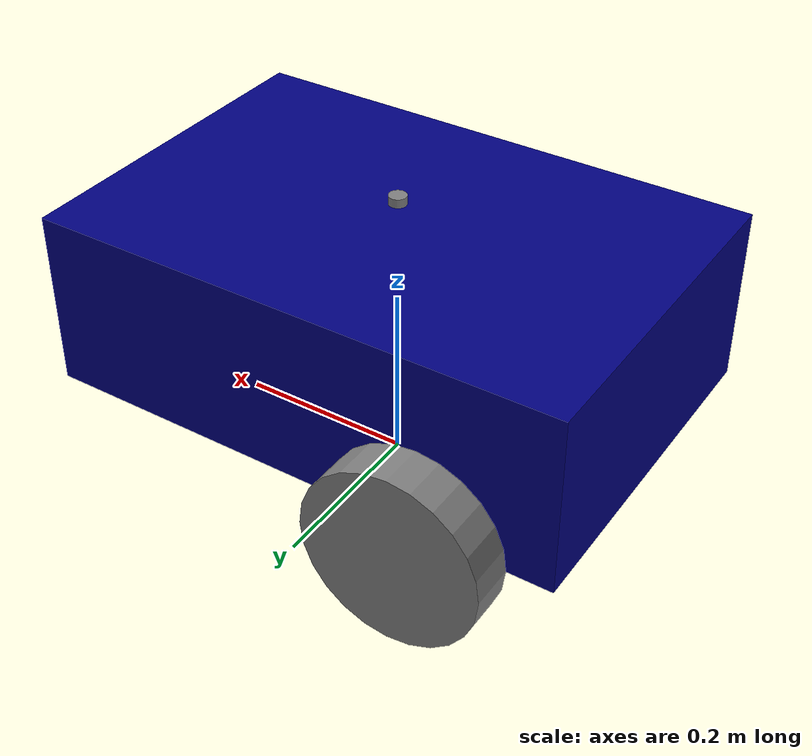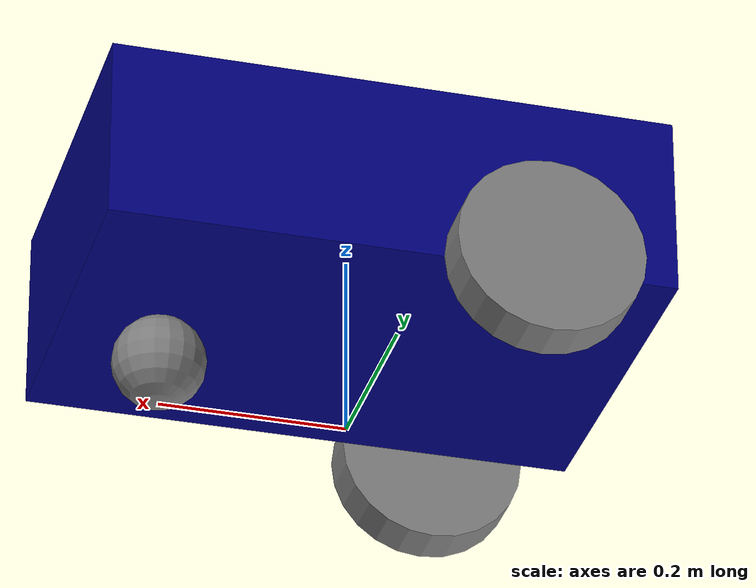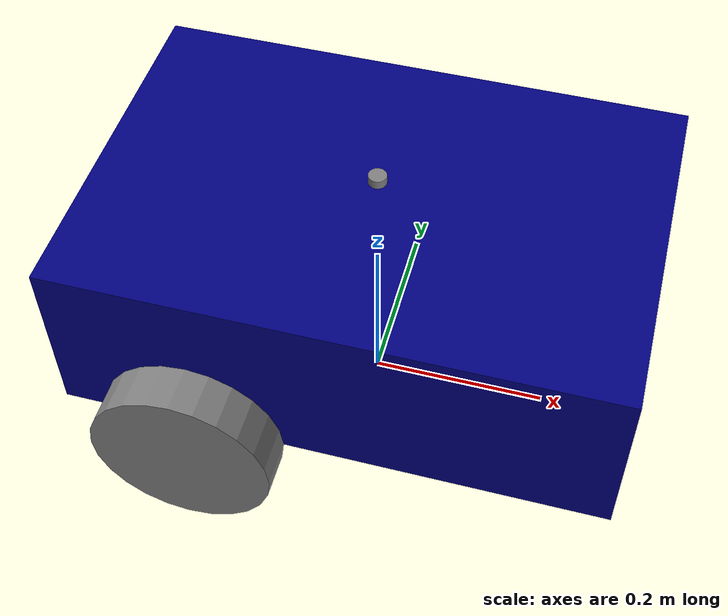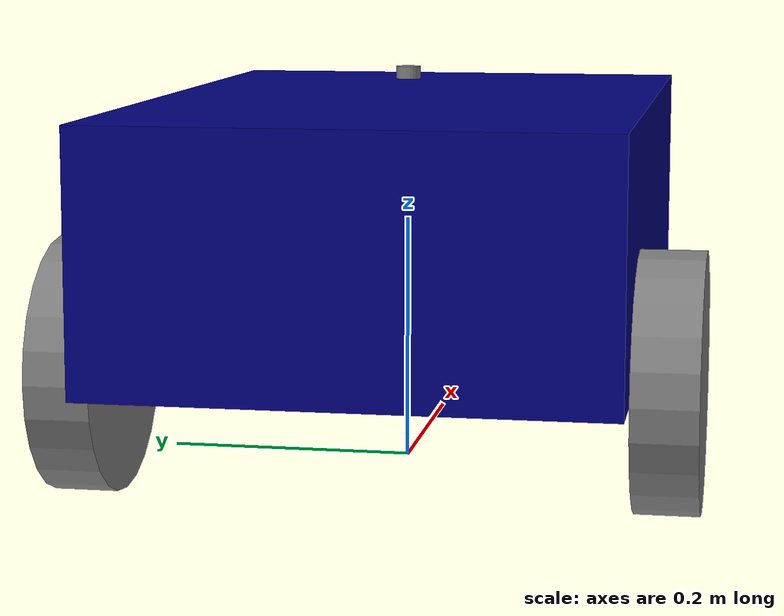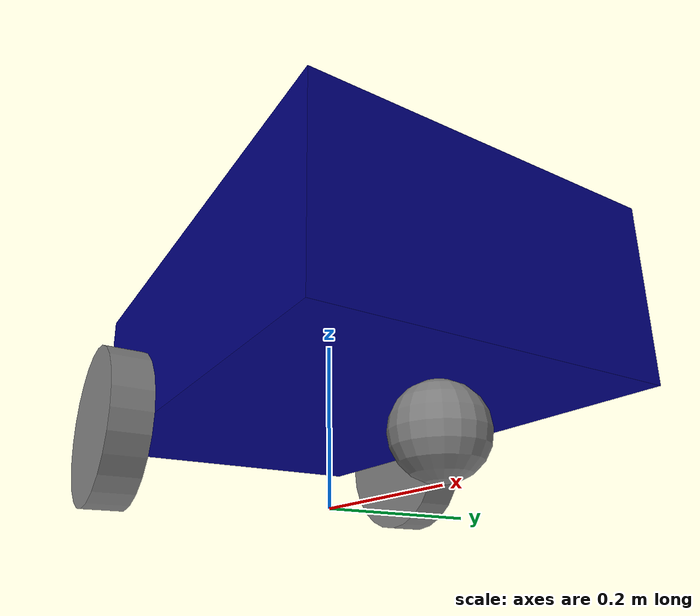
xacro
<?xml version="1.0"?>
<robot name="my_robot"
  xmlns:xacro="http://www.ros.org/wiki/xacro">
  <!-- Reference -> http://wiki.ros.org/urdf/XML -->
  <xacro:include filename="common_properties.xacro"/>
  <xacro:include filename="test_mobile_base.xacro"/>
  <xacro:include filename="mobile_base_gazebo.xacro"/>
  <xacro:include filename="lidar.xacro"/>

</robot>

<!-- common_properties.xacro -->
<robot name="my_robot"
  xmlns:xacro="http://www.ros.org/wiki/xacro">

  <!-- for giving color to a link -->
  <material name="green">
    <color rgba="0 0.5 0 1" />
  </material>
  <material name="grey">
    <color rgba="0.5 0.5 0.5 1" />
  </material>
  <material name="blue">
    <color rgba="0 0 0.5 1" />
  </material>

  <!-- Inertia macro -->
  <xacro:macro name="box_inertia" params="m l w h xyz rpy">
    <inertial>
      <origin xyz="${xyz}" rpy="${rpy}"/>
      <mass value="${m}"/>
      <inertia ixx="${(m/12.0) * (w*w + h*h)}" ixy="0.0" ixz="0.0" iyy="${(m/12.0) * (h*h + l*l)}" iyz="0.0" izz="${(m/12.0) * (w*w + l*l)}" />

    </inertial>
  </xacro:macro>

  <xacro:macro name="cylinder_inertia" params="m radius length xyz rpy">
    <inertial>
      <origin xyz="${xyz}" rpy="${rpy}"/>
      <mass value="${m}"/>
      <inertia ixx="${(m/12.0) * (3 * radius * radius + length * length) }" ixy="0.0" ixz="0.0" iyy="${(m/12.0) * (3 * radius * radius + length * length) }" iyz="0.0" izz="${m/2.0 * (radius * radius) }" />
    </inertial>
  </xacro:macro>

  <xacro:macro name="sphere_inertia" params="m radius xyz rpy">
    <inertial>
      <origin xyz="${xyz}" rpy="${rpy}"/>
      <mass value="${m}"/>
      <inertia ixx="${(2 * m)/5.0 * (radius * radius)}" ixy="0.0" ixz="0.0" iyy="${(2 * m)/5.0 * (radius * radius)}" iyz="0.0" izz="${(2 * m)/5.0 * (radius * radius)}" />
    </inertial>
  </xacro:macro>

</robot>

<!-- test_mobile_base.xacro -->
<robot xmlns:xacro="http://www.ros.org/wiki/xacro">

  <xacro:property name="base_length" value="0.6" />
  <xacro:property name="base_width" value="0.4" />
  <xacro:property name="base_height" value="0.2" />
  <xacro:property name="wheel_radius" value="0.1" />
  <xacro:property name="wheel_length" value="0.05" />

  <!-- empty link -->
  <link name="base_footprint" />

  <!-- base link is like the chasis of the robot -->
  <link name="base_link">
    <visual>
      <geometry>
        <!-- Everything in meters (60cm long, 40cm wide, 20cm high) -->
        <box size="${base_length} ${base_width} ${base_height}" />
      </geometry>
      <!-- origin= center of gravity. relative to link origin -->
      <!-- rpy= roll-pitch-yaw (rotational x-y-z) -->
      <origin xyz="0 0 ${base_height/2.0}" rpy="0 0 0" />
      <!-- use the material defined above -->
      <material name="blue" />
    </visual>

    <collision>
      <geometry>
        <box size="${base_length} ${base_width} ${base_height}" />
      </geometry>
      <origin xyz="0 0 ${base_height/2.0}" rpy="0 0 0" />

    </collision>

    <!-- inertial tag goes here (required for gazebo) -->
    <!-- increase inertia by multiplying dimensions by a factor (fixes drifting issue in gazebo) -->
    <xacro:box_inertia m="5.0" l="${4*base_length}" w="${4*base_width}" h="${4*base_height}" xyz="0.0 0.0 ${base_height/2.0}" rpy="0.0 0.0 0.0" />
  </link>

  <xacro:macro name="wheel_link" params="prefix">
    <link name="${prefix}_wheel_link">
      <visual>
        <geometry>
          <cylinder radius="${wheel_radius}" length="${wheel_length}" />
        </geometry>
        <origin xyz="0 0 0" rpy="${ pi / 2.0 } 0 0" />
        <material name="grey" />
      </visual>

      <collision>
        <geometry>
          <cylinder radius="${wheel_radius}" length="${wheel_length}" />
        </geometry>
        <origin xyz="0 0 0" rpy="${ pi / 2.0 } 0 0" />
      </collision>

      <xacro:cylinder_inertia m="1.0" radius="${wheel_radius}" length="${wheel_length}" xyz="0 0 0" rpy="${ pi / 2.0 } 0 0" />
    </link>
  </xacro:macro>

  <!-- When you have at least 2 links, TF is generated -->
  <xacro:wheel_link prefix="left" />
  <xacro:wheel_link prefix="right" />

  <link name="caster_wheel_link">
    <visual>
      <geometry>
        <sphere radius="${wheel_radius/2.0}" />
      </geometry>
      <origin xyz="0 0 0" rpy="0 0 0" />
      <material name="grey" />
    </visual>

    <collision>
      <geometry>
        <sphere radius="${wheel_radius/2.0}" />
      </geometry>
      <origin xyz="0 0 0" rpy="0 0 0" />
    </collision>

    <xacro:sphere_inertia m="0.5" radius="${wheel_radius/2.0}" xyz="0 0 0" rpy="0 0 0" />
  </link>

  <!-- We have to provide joints -->
  <joint name="base_joint" type="fixed">
    <parent link="base_footprint" />
    <child link="base_link" />
    <origin xyz="0 0 ${wheel_radius}" rpy="0 0 0" />
  </joint>

  <!-- name= {parentLink}_{childLink}_joint (just a convention to keep things consistent, not a necessity) -->
  <!-- base-right_wheel joint -->
  <joint name="base_right_wheel_joint" type="continuous">
    <!-- [type="continuous"]= revolute but with no limits -->
    <!-- 4 most common joint types= fixed, revolute, continuous, prismatic -->
    <parent link="base_link" />
    <child link="right_wheel_link" />
    <!-- ! tip for beginners= put 0 to everything first, then modify by observing the positions at RViz -->
    <origin xyz="${-base_length / 4.0} ${-(base_width / 2.0 + (wheel_length / 2.0))} 0" rpy="0 0 0" />
    <!-- 0= no rotation, 1= +rotation, -1= -rotation -->
    <axis xyz="0 1 0" />
    <!-- lower, upper limits= required for [type="revolute"] (in radians) -->
  </joint>

  <!-- base-left_wheel joint -->
  <joint name="base_left_wheel_joint" type="continuous">
    <parent link="base_link" />
    <child link="left_wheel_link" />
    <origin xyz="${-base_length / 4.0} ${base_width / 2.0 + (wheel_length / 2.0)} 0" rpy="0 0 0" />
    <axis xyz="0 1 0" />
  </joint>

  <joint name="base_caster_wheel_joint" type="fixed">
    <parent link="base_link" />
    <child link="caster_wheel_link" />
    <origin xyz="${base_length / 3.0} 0 ${-wheel_radius/2.0}" rpy="0 0 0" />
  </joint>

</robot>

<!--
Tip for getting the origins right= First fix the origin of the joint,
then fix the visual's origin
-->

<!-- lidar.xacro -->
<robot xmlns:xacro="http://www.ros.org/wiki/xacro">

  <!-- Reference -> https://classic.gazebosim.org/tutorials?tut=ros_gzplugins -->

  <xacro:property name="lidar_length" value="0.01" />
  <xacro:property name="lidar_radius" value="0.01" />

  <!-- we have to define link and joint -->

  <link name="lidar_link">
    <visual>
      <geometry>
        <cylinder length="${lidar_length}" radius="${lidar_radius}"/>
      </geometry>
      <material name="grey"/>
    </visual>

    <collision>
      <geometry>
        <cylinder length="${lidar_length}" radius="${lidar_radius}"/>
      </geometry>
    </collision>

    <xacro:cylinder_inertia m="0.1" radius="${lidar_radius}" length="${lidar_length}" xyz="0 0 0" rpy="0 0 0" />

  </link>

  <joint name="base_lidar_joint" type="fixed">
    <parent link="base_link"/>
    <child link="lidar_link"/>
    <origin xyz="${(0 / 2.0) } 0.0 ${base_height + lidar_length * 2.0}" rpy="0.0 0.0 0.0"/>
  </joint>

  <gazebo reference="lidar_link">
    <material>Gazebo/Red</material>

    <sensor name="laser" type="ray">
      <pose> 0 0 0 0 0 0 </pose>
      <visualize>1</visualize>
      <update_rate>100</update_rate>
      <always_on>1</always_on>
      <ray>
        <scan>
          <horizontal>
            <resolution>1</resolution>
            <samples>180</samples>
            <min_angle>${-pi/2.0}</min_angle>
            <max_angle>${pi/2.0}</max_angle>
          </horizontal>
        </scan>
        <range>
          <min>0.3</min>
          <max>10.0</max>
          <resolution>0.01</resolution>
        </range>
      </ray>
      <plugin name="laser_controller" filename="libgazebo_ros_ray_sensor.so">
        <ros>
          <remapping>~/out:=scan</remapping>
        </ros>
        <output_type>sensor_msgs/LaserScan</output_type>
        <frame_name>lidar_link</frame_name>
      </plugin>
    </sensor>
  </gazebo>

</robot>
